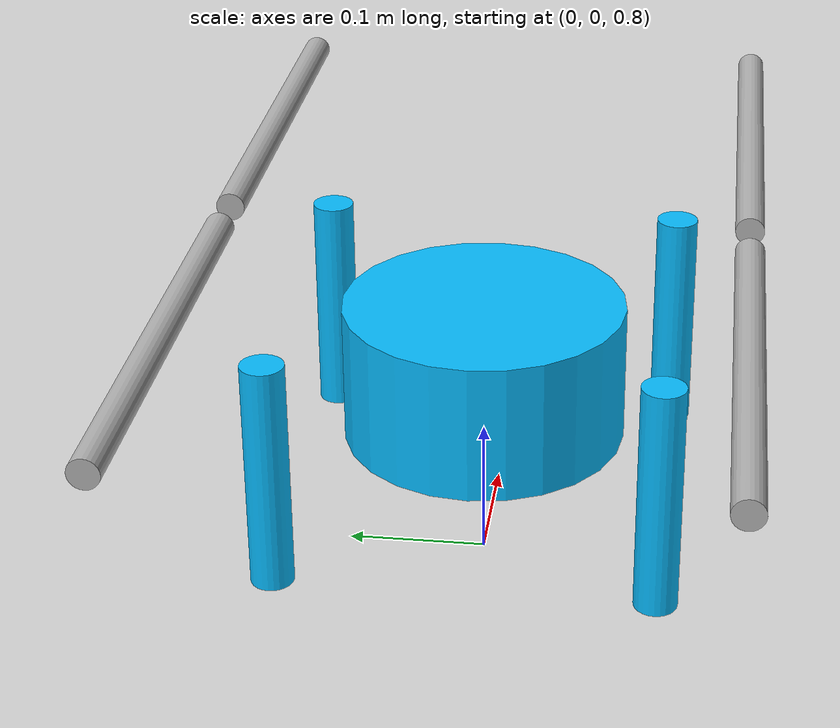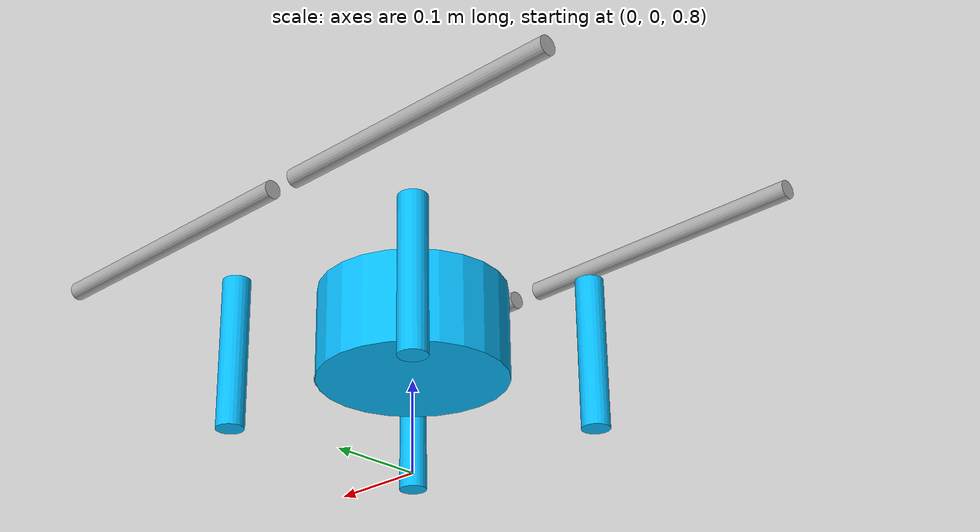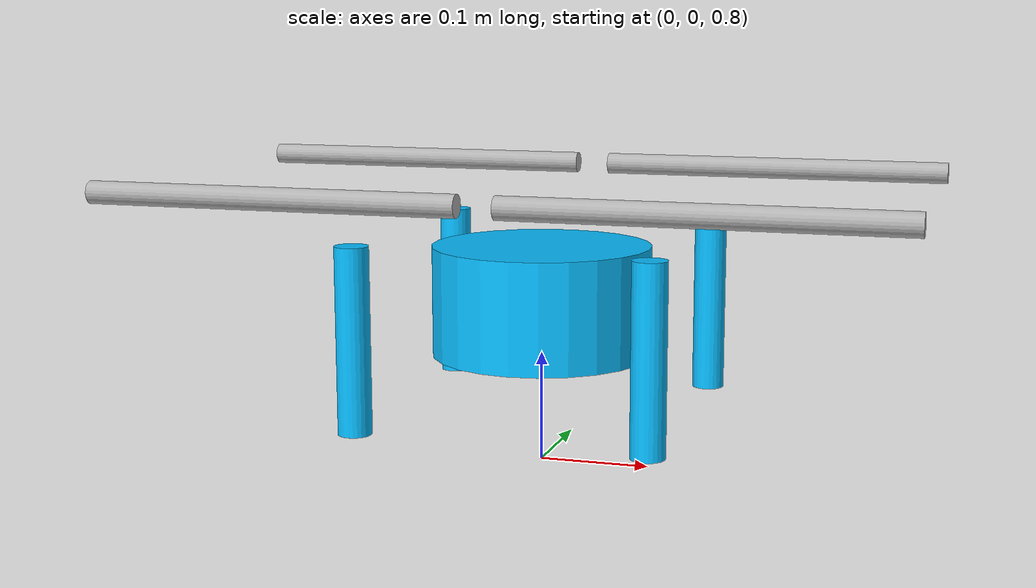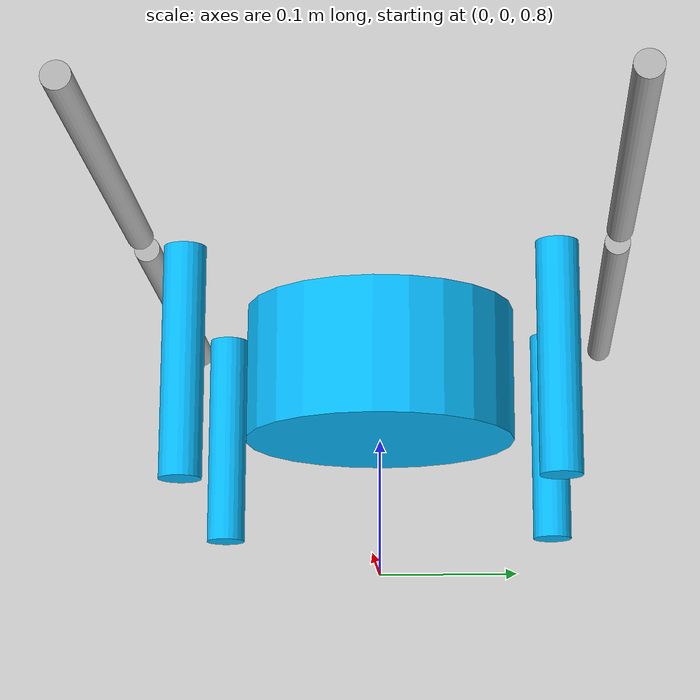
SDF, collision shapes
<?xml version="1.0" encoding="UTF-8"?>
<sdf version='1.9'>
  <model name="x500">
    <pose>0 0 1 0 0 0</pose>
	  <self_collide>false</self_collide>
	  <static>false</static>

    <link name="base_link">

	    <!-- Body physics {-->
		  <inertial>
		    <mass>2.0</mass>
		    <inertia>
			    <ixx>0.03166666666666667</ixx>
			    <ixy>0</ixy>
			    <ixz>0</ixz>
			    <iyy>0.03166666666666667</iyy>
			    <iyz>0</iyz>
			    <izz>0.0625</izz>
		    </inertia>
		  </inertial>
		  <collision name="base_link_collision">
        <pose>0 0 -0.05 0 0 0</pose>
		    <geometry>
			    <cylinder>
			      <length>0.1</length>
			      <radius>0.1</radius>
			    </cylinder>
		    </geometry>
		    <surface>
			    <contact>
			      <ode>
				      <min_depth>0.001</min_depth>
				      <max_vel>0.0</max_vel>
			      </ode>
			    </contact>
          <friction>
            <ode/>
			    </friction>
		    </surface>
		  </collision>

	    <!-- Body visuals {-->

	    <!-- Boards {-->
		  <visual name="top_board_visual">
		    <pose>0 0 0 0 0 1.5707963267950003</pose>
		    <geometry>
			    <mesh>
			      <uri>model://x500_v2/meshes/x500v2/top_board_mesh_file.dae</uri>
			      <scale>1 1 1</scale>
			    </mesh>
		    </geometry>
		  </visual>

		  <visual name="bottom_board_visual">
		    <pose>0 0 0 0 0 1.5707963267950003</pose>
		    <geometry>
			    <mesh>
			      <uri>model://x500_v2/meshes/x500v2/bottom_board_mesh_file.dae</uri>
			      <scale>1 1 1</scale>
			    </mesh>
		    </geometry>
		  </visual>

	    <!-- Arms and legs {-->

		  <visual name="arm_carbon_front_right_visual">
		    <pose>0 0 0 0 0 0.0</pose>
		    <geometry>
			  <mesh>
			    <uri>model://x500_v2/meshes/x500v2/arm_carbon_mesh_file.dae</uri>
			    <scale>1 1 1</scale>
			  </mesh>
		    </geometry>
		  </visual>

		  <visual name="arm_plastic1_front_right_visual">
		    <pose>0 0 0 0 0 0.0</pose>
		    <geometry>
			    <mesh>
			      <uri>model://x500_v2/meshes/x500v2/arm_plastic1_mesh_file.stl</uri>
			      <scale>1 1 1</scale>
			    </mesh>
		    </geometry>
		    <material> <!-- MRS_BLUE -->
			    <ambient>0.03 0.74 1.0</ambient>
			    <diffuse>0.03 0.74 1.0</diffuse>
			    <specular>0.1 0.1 0.1 1</specular>
		    </material>
		  </visual>

		  <visual name="arm_plastic2_front_right_visual">
		    <pose>0 0 0 0 0 0.0</pose>
		    <geometry>
			    <mesh>
			      <uri>model://x500_v2/meshes/x500v2/arm_plastic2_mesh_file.stl</uri>
			      <scale>1 1 1</scale>
			    </mesh>
		    </geometry>
		    <material> <!-- MRS_BLUE -->
			    <ambient>0.03 0.74 1.0</ambient>
			    <diffuse>0.03 0.74 1.0</diffuse>
			    <specular>0.1 0.1 0.1 1</specular>
		    </material>
		  </visual>

		  <visual name="arm_3d_print_front_right_visual">
		    <pose>0 0 0 0 0 0.0</pose>
		    <geometry>
			    <mesh>
			      <uri>model://x500_v2/meshes/x500v2/arm_3d_print_mesh_file.stl</uri>
			      <scale>1 1 1</scale>
			    </mesh>
		    </geometry>
		    <material>
			    <ambient>0 0 0</ambient>
			    <diffuse>0 0 0</diffuse>
			    <specular>0.1 0.1 0.1 1</specular>
		    </material>
		  </visual>

		  <visual name="arm_carbon_front_left_visual">
		    <pose>0 0 0 0 0 1.57079633</pose>
		    <geometry>
			    <mesh>
			      <uri>model://x500_v2/meshes/x500v2/arm_carbon_mesh_file.dae</uri>
			      <scale>1 1 1</scale>
			    </mesh>
		    </geometry>
		  </visual>

		  <visual name="arm_plastic1_front_left_visual">
		    <pose>0 0 0 0 0 1.57079633</pose>
		    <geometry>
			    <mesh>
			      <uri>model://x500_v2/meshes/x500v2/arm_plastic1_mesh_file.stl</uri>
			      <scale>1 1 1</scale>
			    </mesh>
		    </geometry>
		    <material> <!-- MRS_BLUE -->
			    <ambient>0.03 0.74 1.0</ambient>
			    <diffuse>0.03 0.74 1.0</diffuse>
			    <specular>0.1 0.1 0.1 1</specular>
		    </material>
		  </visual>

		  <visual name="arm_plastic2_front_left_visual">
		    <pose>0 0 0 0 0 1.57079633</pose>
		    <geometry>
			    <mesh>
			      <uri>model://x500_v2/meshes/x500v2/arm_plastic2_mesh_file.stl</uri>
			      <scale>1 1 1</scale>
			    </mesh>
		    </geometry>
		    <material> <!-- MRS_BLUE -->
			    <ambient>0.03 0.74 1.0</ambient>
			    <diffuse>0.03 0.74 1.0</diffuse>
			    <specular>0.1 0.1 0.1 1</specular>
		    </material>
		  </visual>

		  <visual name="arm_3d_print_front_left_visual">
		    <pose>0 0 0 0 0 1.57079633</pose>
		    <geometry>
			    <mesh>
			      <uri>model://x500_v2/meshes/x500v2/arm_3d_print_mesh_file.stl</uri>
			      <scale>1 1 1</scale>
			    </mesh>
		    </geometry>
		    <material> <!-- BLACK -->
			    <ambient>0 0 0 1</ambient>
			    <diffuse>0 0 0 1</diffuse>
			    <specular>0.1 0.1 0.1 1 </specular>
		    </material>
		  </visual>

		  <visual name="arm_carbon_back_left_visual">
		    <pose>0 0 0 0 0 3.14159266</pose>
		    <geometry>
			    <mesh>
			      <uri>model://x500_v2/meshes/x500v2/arm_carbon_mesh_file.dae</uri>
			      <scale>1 1 1</scale>
			    </mesh>
		    </geometry>
		  </visual>

		  <visual name="arm_plastic1_back_left_visual">
		    <pose>0 0 0 0 0 3.14159266</pose>
		    <geometry>
			    <mesh>
			      <uri>model://x500_v2/meshes/x500v2/arm_plastic1_mesh_file.stl</uri>
			      <scale>1 1 1</scale>
			    </mesh>
		    </geometry>
		    <material> <!-- MRS_BLUE -->
			    <ambient>0.03 0.74 1.0</ambient>
			    <diffuse>0.03 0.74 1.0</diffuse>
			    <specular>0.1 0.1 0.1 1</specular>
		    </material>
		  </visual>

		  <visual name="arm_plastic2_back_left_visual">
		    <pose>0 0 0 0 0 3.14159266</pose>
		    <geometry>
			    <mesh>
			      <uri>model://x500_v2/meshes/x500v2/arm_plastic2_mesh_file.stl</uri>
			      <scale>1 1 1</scale>
			    </mesh>
		    </geometry>
		    <material> <!-- MRS_BLUE -->
			    <ambient>0.03 0.74 1.0</ambient>
			    <diffuse>0.03 0.74 1.0</diffuse>
			    <specular>0.1 0.1 0.1 1</specular>
		    </material>
		  </visual>

		  <visual name="arm_3d_print_back_left_visual">
		    <pose>0 0 0 0 0 3.14159266</pose>
		    <geometry>
			    <mesh>
			      <uri>model://x500_v2/meshes/x500v2/arm_3d_print_mesh_file.stl</uri>
			      <scale>1 1 1</scale>
			    </mesh>
		    </geometry>
		    <material> <!-- LASER_BLUE -->
			    <ambient>0 0 1</ambient>
			    <diffuse>0 0 1</diffuse>
			    <specular>0.1 0.1 0.1 1 </specular>
		    </material>
		  </visual>

		  <visual name="arm_carbon_back_right_visual">
		    <pose>0 0 0 0 0 4.71238899</pose>
		    <geometry>
			    <mesh>
			      <uri>model://x500_v2/meshes/x500v2/arm_carbon_mesh_file.dae</uri>
			      <scale>1 1 1</scale>
			    </mesh>
		    </geometry>
		  </visual>

		  <visual name="arm_plastic1_back_right_visual">
		    <pose>0 0 0 0 0 4.71238899</pose>
		    <geometry>
			    <mesh>
			      <uri>model://x500_v2/meshes/x500v2/arm_plastic1_mesh_file.stl</uri>
			      <scale>1 1 1</scale>
			    </mesh>
		    </geometry>
		    <material> <!-- MRS_BLUE -->
			    <ambient>0.03 0.74 1.0</ambient>
			    <diffuse>0.03 0.74 1.0</diffuse>
			    <specular>0.1 0.1 0.1 1</specular>
		    </material>
		  </visual>

		  <visual name="arm_plastic2_back_right_visual">
		    <pose>0 0 0 0 0 4.71238899</pose>
		    <geometry>
			    <mesh>
			      <uri>model://x500_v2/meshes/x500v2/arm_plastic2_mesh_file.stl</uri>
			      <scale>1 1 1</scale>
			    </mesh>
		    </geometry>
		    <material> <!-- MRS_BLUE -->
			    <ambient>0.03 0.74 1.0</ambient>
			    <diffuse>0.03 0.74 1.0</diffuse>
			    <specular>0.1 0.1 0.1 1</specular>
		    </material>
		  </visual>

		  <visual name="arm_3d_print_back_right_visual">
		    <pose>0 0 0 0 0 4.71238899</pose>
		    <geometry>
			    <mesh>
			      <uri>model://x500_v2/meshes/x500v2/arm_3d_print_mesh_file.stl</uri>
			      <scale>1 1 1</scale>
			    </mesh>
		    </geometry>
		    <material> <!-- LASER_BLUE -->
			    <ambient>0 0 1</ambient>
			    <diffuse>0 0 1</diffuse>
			    <specular>0.1 0.1 0.1 1 </specular>
		    </material>
		  </visual>

		  <visual name="leg_3d_print_front_right_visual">
		    <pose>0 0 0 0 0 0</pose>
		    <geometry>
			    <mesh>
			      <uri>model://x500_v2/meshes/x500v2/leg_3d_print_mesh_file.stl</uri>
			      <scale>1 1 1</scale>
			  </mesh>
		    </geometry>
		    <material> <!-- BLACK -->
			    <ambient>0 0 0 1</ambient>
			    <diffuse>0 0 0 1</diffuse>
			    <specular>0.1 0.1 0.1 1 </specular>
		    </material>
		  </visual>

		  <collision name="leg_3d_print_front_right_link_collision">
		    <pose>0.13 -0.13 -0.07 0 0 0</pose>
		    <geometry>
			    <cylinder>
			      <length>0.165</length>
			      <radius>0.015</radius>
			    </cylinder>
		    </geometry>
		    <surface>
			    <contact>
			      <ode>
				      <min_depth>0.001</min_depth>
				      <max_vel>0.0</max_vel>
			      </ode>
			    </contact>
			    <friction>
			      <ode/>
			    </friction>
		    </surface>
		  </collision>

		  <visual name="leg_3d_print_front_left_visual">
		    <pose>0 0 0 0 0 1.57079633</pose>
		    <geometry>
			    <mesh>
			      <uri>model://x500_v2/meshes/x500v2/leg_3d_print_mesh_file.stl</uri>
			      <scale>1 1 1</scale>
			    </mesh>
		    </geometry>
		    <material> <!-- BLACK -->
			    <ambient>0 0 0 1</ambient>
			    <diffuse>0 0 0 1</diffuse>
			    <specular>0.1 0.1 0.1 1 </specular>
		    </material>
		  </visual>

		  <collision name="leg_3d_print_front_left_link_collision">
		    <pose>0.13 0.13 -0.07 0 0 1.57079633</pose>
		    <geometry>
			    <cylinder>
			      <length>0.165</length>
			      <radius>0.015</radius>
			    </cylinder>
		    </geometry>
		    <surface>
			    <contact>
			      <ode>
				      <min_depth>0.001</min_depth>
				      <max_vel>0.0</max_vel>
			      </ode>
			    </contact>
			    <friction>
			      <ode/>
			    </friction>
		    </surface>
		  </collision>

		  <visual name="leg_3d_print_back_left_visual">
		    <pose>0 0 0 0 0 3.14159266</pose>
		    <geometry>
			    <mesh>
			      <uri>model://x500_v2/meshes/x500v2/leg_3d_print_mesh_file.stl</uri>
			      <scale>1 1 1</scale>
			    </mesh>
		    </geometry>
		    <material> <!-- LASER_BLUE -->
			    <ambient>0 0 1</ambient>
			    <diffuse>0 0 1</diffuse>
			    <specular>0.1 0.1 0.1 1 </specular>
		    </material>
		  </visual>

		  <collision name="leg_3d_print_back_left_link_collision">
		    <pose>-0.13 0.13 -0.07 0 0 3.14159266</pose>
		    <geometry>
			    <cylinder>
			      <length>0.165</length>
			      <radius>0.015</radius>
			    </cylinder>
		    </geometry>
		    <surface>
			    <contact>
			      <ode>
				      <min_depth>0.001</min_depth>
				      <max_vel>0.0</max_vel>
			      </ode>
			    </contact>
			    <friction>
			      <ode/>
			    </friction>
		    </surface>
		  </collision>

		  <visual name="leg_3d_print_back_right_visual">
		    <pose>0 0 0 0 0 4.71238899</pose>
		    <geometry>
			    <mesh>
			      <uri>model://x500_v2/meshes/x500v2/leg_3d_print_mesh_file.stl</uri>
			      <scale>1 1 1</scale>
			    </mesh>
		    </geometry>
		    <material> <!-- LASER_BLUE -->
			    <ambient>0 0 1</ambient>
			    <diffuse>0 0 1</diffuse>
			    <specular>0.1 0.1 0.1 1 </specular>
		    </material>
		  </visual>

		  <collision name="leg_3d_print_back_right_link_collision">
		    <pose>-0.13 -0.13 -0.07 0 0 4.71238899</pose>
		    <geometry>
			    <cylinder>
			      <length>0.165</length>
			      <radius>0.015</radius>
			    </cylinder>
		    </geometry>
		    <surface>
			    <contact>
			      <ode>
				      <min_depth>0.001</min_depth>
				      <max_vel>0.0</max_vel>
			      </ode>
			    </contact>
			    <friction>
			      <ode/>
			    </friction>
		    </surface>
		  </collision>

      <!-- intel nuc {-->
		  <visual name="nuc_board_visual">
		    <pose>0 0 0 0 0 1.5707963267950003</pose>
		    <geometry>
			    <mesh>
			      <uri>model://x500_v2/meshes/x500v2/nuc_board_mesh_file.stl</uri>
			      <scale>1 1 1</scale>
			    </mesh>
		    </geometry>
		    <material> <!-- GREY -->
			    <ambient>.3 .3 .3  1</ambient>
			    <diffuse>.7 .7 .7  1</diffuse>
			    <specular>0.01 0.01 0.01 1</specular>
		    </material>
		  </visual>
		  <visual name="nuc_cooler_visual">
		    <pose>0 0 0 0 0 1.5707963267950003</pose>
		    <geometry>
			    <mesh>
			      <uri>model://x500_v2/meshes/x500v2/nuc_cooler_mesh_file.stl</uri>
			      <scale>1 1 1</scale>
			    </mesh>
		    </geometry>
		    <material> <!-- DARK GREY -->
			    <ambient>.175 .175 .175  1.0</ambient>
			    <diffuse>.175 .175 .175  1.0</diffuse>
			    <specular>.175 .175 .175  1.0</specular>
		    </material>
		  </visual>
		  <visual name="nuc_hex_posts_visual">
		    <pose>0 0 0 0 0 1.5707963267950003</pose>
		    <geometry>
			    <mesh>
			      <uri>model://x500_v2/meshes/x500v2/nuc_hex_posts_mesh_file.stl</uri>
			      <scale>1 1 1</scale>
			    </mesh>
		    </geometry>
		    <material> <!-- GREY -->
			    <ambient>.3 .3 .3  1</ambient>
			    <diffuse>.7 .7 .7  1</diffuse>
			    <specular>0.01 0.01 0.01 1</specular>
		    </material>
		  </visual>

      <!-- pixhawk {-->
		  <visual name="pixhawk6c_visual">
		    <pose>0 0 0 0 0 1.5707963267950003</pose>
		    <geometry>
			    <mesh>
			      <uri>model://x500_v2/meshes/x500v2/pixhawk6c_mesh_file.stl</uri>
			      <scale>1 1 1</scale>
			    </mesh>
		    </geometry>
		    <material> <!-- DARK GREY -->
			    <ambient>.175 .175 .175  1.0</ambient>
			    <diffuse>.175 .175 .175  1.0</diffuse>
			    <specular>.175 .175 .175  1.0</specular>
		    </material>
		  </visual>

      <!-- motors {-->

		  <visual name="motor_bottom_front_right_visual">
		    <pose>0 0 0 0 0 0.0</pose>
		    <geometry>
			    <mesh>
			      <uri>model://x500_v2/meshes/x500v2/motor_bottom_mesh_file.stl</uri>
			      <scale>1 1 1</scale>
			    </mesh>
		    </geometry>
		    <material> <!-- GREY -->
			    <ambient>.3 .3 .3  1</ambient>
			    <diffuse>.7 .7 .7  1</diffuse>
			    <specular>0.01 0.01 0.01 1</specular>
		    </material>
		  </visual>

		  <visual name="motor_middle_front_right_visual">
		    <pose>0 0 0 0 0 0.0</pose>
		    <geometry>
			    <mesh>
			      <uri>model://x500_v2/meshes/x500v2/motor_middle_mesh_file.stl</uri>
			      <scale>1 1 1</scale>
			    </mesh>
		    </geometry>
		    <material> <!-- BLACK -->
			    <ambient>0 0 0 1</ambient>
			    <diffuse>0 0 0 1</diffuse>
			    <specular>0.1 0.1 0.1 1 </specular>
		    </material>
		  </visual>

		  <visual name="motor_bottom_front_left_visual">
		    <pose>0 0 0 0 0 1.57079633</pose>
		    <geometry>
			    <mesh>
			      <uri>model://x500_v2/meshes/x500v2/motor_bottom_mesh_file.stl</uri>
			      <scale>1 1 1</scale>
			    </mesh>
		    </geometry>
		    <material> <!-- GREY -->
			    <ambient>.3 .3 .3  1</ambient>
			    <diffuse>.7 .7 .7  1</diffuse>
			    <specular>0.01 0.01 0.01 1</specular>
		    </material>
		  </visual>

		  <visual name="motor_middle_front_left_visual">
		    <pose>0 0 0 0 0 1.57079633</pose>
		    <geometry>
			    <mesh>
			      <uri>model://x500_v2/meshes/x500v2/motor_middle_mesh_file.stl</uri>
			      <scale>1 1 1</scale>
			    </mesh>
		    </geometry>
		    <material> <!-- BLACK -->
			    <ambient>0 0 0 1</ambient>
			    <diffuse>0 0 0 1</diffuse>
			    <specular>0.1 0.1 0.1 1 </specular>
		    </material>
		  </visual>

		  <visual name="motor_bottom_back_left_visual">
		    <pose>0 0 0 0 0 3.14159266</pose>
		    <geometry>
			    <mesh>
			      <uri>model://x500_v2/meshes/x500v2/motor_bottom_mesh_file.stl</uri>
			      <scale>1 1 1</scale>
			    </mesh>
		    </geometry>
		    <material> <!-- GREY -->
			    <ambient>.3 .3 .3  1</ambient>
			    <diffuse>.7 .7 .7  1</diffuse>
			    <specular>0.01 0.01 0.01 1</specular>
		    </material>
		  </visual>

		  <visual name="motor_middle_back_left_visual">
		    <pose>0 0 0 0 0 3.14159266</pose>
		    <geometry>
			    <mesh>
			      <uri>model://x500_v2/meshes/x500v2/motor_middle_mesh_file.stl</uri>
			      <scale>1 1 1</scale>
			    </mesh>
		    </geometry>
		    <material> <!-- BLACK -->
			    <ambient>0 0 0 1</ambient>
			    <diffuse>0 0 0 1</diffuse>
			    <specular>0.1 0.1 0.1 1 </specular>
		    </material>
		  </visual>

		  <visual name="motor_bottom_back_right_visual">
		    <pose>0 0 0 0 0 4.71238899</pose>
		    <geometry>
			    <mesh>
			      <uri>model://x500_v2/meshes/x500v2/motor_bottom_mesh_file.stl</uri>
			      <scale>1 1 1</scale>
			    </mesh>
		    </geometry>
		    <material> <!-- GREY -->
			    <ambient>.3 .3 .3  1</ambient>
			    <diffuse>.7 .7 .7  1</diffuse>
			    <specular>0.01 0.01 0.01 1</specular>
		    </material>
		  </visual>

		  <visual name="motor_middle_back_right_visual">
		    <pose>0 0 0 0 0 4.71238899</pose>
		    <geometry>
			    <mesh>
			      <uri>model://x500_v2/meshes/x500v2/motor_middle_mesh_file.stl</uri>
			      <scale>1 1 1</scale>
			    </mesh>
		    </geometry>
		    <material> <!-- BLACK -->
			    <ambient>0 0 0 1</ambient>
			    <diffuse>0 0 0 1</diffuse>
			    <specular>0.1 0.1 0.1 1 </specular>
		    </material>
		  </visual>

      <!-- battery mount and battery {-->
		  <visual name="battery_mount_visual">
		    <pose>0 0 0.001 0 0 1.5707963267950003</pose>
		    <geometry>
			    <mesh>
			      <uri>model://x500_v2/meshes/x500v2/battery_mount_mesh_file.stl</uri>
			      <scale>1 1 1</scale>
			    </mesh>
		    </geometry>
		    <material> <!-- LASER_BLUE -->
			    <ambient>0 0 1</ambient>
			    <diffuse>0 0 1</diffuse>
			    <specular>0.1 0.1 0.1 1 </specular>
		    </material>
		  </visual>
		  <visual name="battery_visual">
		    <pose>0 0 0.001 0 0 1.5707963267950003</pose>
		    <geometry>
			    <mesh>
			      <uri>model://x500_v2/meshes/x500v2/battery_mesh_file.stl</uri>
			      <scale>1 1 1</scale>
			    </mesh>
		    </geometry>
		    <material> <!-- GREY -->
			    <ambient>.3 .3 .3  1</ambient>
			    <diffuse>.7 .7 .7  1</diffuse>
			    <specular>0.01 0.01 0.01 1</specular>
		    </material>
		  </visual>

      <!-- gps mount and gps {-->
		  <visual name="gps_mount_visual">
		    <pose>0 0 0 0 0 1.5707963267950003</pose>
		    <geometry>
			    <mesh>
			      <uri>model://x500_v2/meshes/x500v2/gps_mount_mesh_file.stl</uri>
			      <scale>1 1 1</scale>
			    </mesh>
		    </geometry>
		    <material> <!-- GREY -->
			    <ambient>.3 .3 .3  1</ambient>
			    <diffuse>.7 .7 .7  1</diffuse>
			    <specular>0.01 0.01 0.01 1</specular>
		    </material>
		  </visual>
		  <visual name="gps_module_visual">
		    <pose>0 0 0 0 0 1.5707963267950003</pose>
		    <geometry>
			    <mesh>
			      <uri>model://x500_v2/meshes/x500v2/gps_module_mesh_file.stl</uri>
			      <scale>1 1 1</scale>
			    </mesh>
		    </geometry>
		    <material> <!-- BLACK -->
			    <ambient>0 0 0 1</ambient>
			    <diffuse>0 0 0 1</diffuse>
			    <specular>0.1 0.1 0.1 1 </specular>
		    </material>
		  </visual>

      <!-- rplidar mount {-->
		  <visual name="garmin_mount_visual">
		    <pose>0 0 0.001 0 0 1.5707963267950003</pose>
		    <geometry>
			    <mesh>
			      <uri>model://x500_v2/meshes/x500v2/garmin_mount_mesh_file.stl</uri>
			      <scale>1 1 1</scale>
			    </mesh>
		    </geometry>
		    <material> <!-- BLACK -->
			    <ambient>0 0 0 1</ambient>
			    <diffuse>0 0 0 1</diffuse>
			    <specular>0.1 0.1 0.1 1 </specular>
		    </material>
		  </visual>

      <sensor name="air_pressure_sensor" type="air_pressure">
        <always_on>1</always_on>
        <update_rate>50</update_rate>
        <air_pressure>
          <pressure>
            <noise type="gaussian">
              <mean>0</mean>
              <stddev>0.01</stddev>
            </noise>
          </pressure>
        </air_pressure>
      </sensor>
      <sensor name="imu_sensor" type="imu">
        <always_on>1</always_on>
        <update_rate>250</update_rate>
      </sensor>

    </link>

    <!-- Propellers {-->
    <link name="prop_0_link">
      <gravity>true</gravity>
      <self_collide>false</self_collide>
      <velocity_decay/>
	    <pose>0.1812 -0.1812 0.057 0 0 0</pose>
	    <inertial>
		    <mass>0.005</mass>
		    <inertia>
		      <ixx>0.0001</ixx>
		      <ixy>0</ixy>
		      <ixz>0</ixz>
		      <iyy>0.0001</iyy>
		      <iyz>0</iyz>
		      <izz>0.0001</izz>
		    </inertia>
	    </inertial>
	    <visual name="prop_0_visual_1">
		    <geometry>
		      <mesh>
		        <uri>model://x500_v2/meshes/x500v2/prop_mesh_file.dae</uri>
		        <scale>1 1 1</scale>
		      </mesh>
		    </geometry>
	    </visual>
	    <visual name="prop_0_visual_2">
		    <pose>0 0 -0.0086 0 0 0</pose>
		    <geometry>
		      <mesh>
		        <uri>model://x500_v2/meshes/x500v2/motor_top_mesh_file.stl</uri>
		        <scale>1 1 1</scale>
		      </mesh>
		    </geometry>
	      <material> <!-- GREY -->
			    <ambient>.3 .3 .3  1</ambient>
			    <diffuse>.7 .7 .7  1</diffuse>
			    <specular>0.01 0.01 0.01 1</specular>
	      </material>
	    </visual>
	    <collision name="prop_0_link_collision">
		    <pose>0 0 0 0 1.5707963267950003 0</pose>
		    <geometry>
		      <cylinder>
		        <length>0.3302</length>
		        <radius>0.01</radius>
		      </cylinder>
		    </geometry>
		    <surface>
		      <contact>
		        <ode/>
		      </contact>
		      <friction>
		        <ode/>
		      </friction>
		    </surface>
	    </collision>
	  </link>
    <joint name="prop_0_joint" type="revolute">
	    <parent>base_link</parent>
	    <child>prop_0_link</child>
	    <axis>
		    <xyz>0 0 1</xyz>
		    <limit>
		      <lower>-1e+16</lower>
		      <upper>1e+16</upper>
		    </limit>
		    <dynamics>
		      <spring_reference>0</spring_reference>
		      <spring_stiffness>0</spring_stiffness>
		    </dynamics>
	    </axis>
	  </joint>

    <link name="prop_1_link">
      <gravity>true</gravity>
      <self_collide>false</self_collide>
      <velocity_decay/>
	    <pose>-0.1812 0.1812 0.057 0 0 0</pose>
	    <inertial>
		    <mass>0.005</mass>
		    <inertia>
		      <ixx>0.0001</ixx>
		      <ixy>0</ixy>
		      <ixz>0</ixz>
		      <iyy>0.0001</iyy>
		      <iyz>0</iyz>
		      <izz>0.0001</izz>
		    </inertia>
	    </inertial>
	    <visual name="prop_1_visual_1">
		    <geometry>
		      <mesh>
		        <uri>model://x500_v2/meshes/x500v2/prop_mesh_file.dae</uri>
		        <scale>1 1 1</scale>
		      </mesh>
		    </geometry>
	    </visual>
	    <visual name="prop_1_visual_2">
		    <pose>0 0 -0.0086 0 0 0</pose>
		    <geometry>
		      <mesh>
		        <uri>model://x500_v2/meshes/x500v2/motor_top_mesh_file.stl</uri>
		        <scale>1 1 1</scale>
		      </mesh>
		    </geometry>
	      <material> <!-- GREY -->
			    <ambient>.3 .3 .3  1</ambient>
			    <diffuse>.7 .7 .7  1</diffuse>
			    <specular>0.01 0.01 0.01 1</specular>
	      </material>
	    </visual>
	    <collision name="prop_1_link_collision">
		    <pose>0 0 0 0 1.5707963267950003 0</pose>
		    <geometry>
		      <cylinder>
		        <length>0.3302</length>
		        <radius>0.01</radius>
		      </cylinder>
		    </geometry>
		    <surface>
		      <contact>
		        <ode/>
		      </contact>
		      <friction>
		        <ode/>
		      </friction>
		    </surface>
	    </collision>
    </link>
	  <joint name="prop_1_joint" type="revolute">
	    <parent>base_link</parent>
	    <child>prop_1_link</child>
	    <axis>
		    <xyz>0 0 1</xyz>
		    <limit>
		      <lower>-1e+16</lower>
		      <upper>1e+16</upper>
		    </limit>
		    <dynamics>
		      <spring_reference>0</spring_reference>
		      <spring_stiffness>0</spring_stiffness>
		    </dynamics>
	    </axis>
	  </joint>

    <link name="prop_2_link">
      <gravity>true</gravity>
      <self_collide>false</self_collide>
      <velocity_decay/>
	    <pose>0.1812 0.1812 0.057 0 0 0</pose>
	    <inertial>
		    <mass>0.005</mass>
		    <inertia>
		      <ixx>0.0001</ixx>
		      <ixy>0</ixy>
		      <ixz>0</ixz>
		      <iyy>0.0001</iyy>
		      <iyz>0</iyz>
		      <izz>0.0001</izz>
		    </inertia>
	    </inertial>
	    <visual name="prop_2_visual_1">
		    <geometry>
		      <mesh>
		        <uri>model://x500_v2/meshes/x500v2/prop_mesh_file.dae</uri>
		        <scale>-1 1 1</scale>
		      </mesh>
		    </geometry>
	    </visual>
	    <visual name="prop_2_visual_2">
		    <pose>0 0 -0.0086 0 0 0</pose>
		    <geometry>
		      <mesh>
		        <uri>model://x500_v2/meshes/x500v2/motor_top_mesh_file.stl</uri>
		        <scale>-1 1 1</scale>
		      </mesh>
		    </geometry>
	      <material> <!-- GREY -->
			    <ambient>.3 .3 .3  1</ambient>
			    <diffuse>.7 .7 .7  1</diffuse>
			    <specular>0.01 0.01 0.01 1</specular>
	      </material>
	    </visual>
	    <collision name="prop_2_link_collision">
		    <pose>0 0 0 0 1.5707963267950003 0</pose>
		    <geometry>
		      <cylinder>
		        <length>0.3302</length>
		        <radius>0.01</radius>
		      </cylinder>
		    </geometry>
		    <surface>
		      <contact>
		        <ode/>
		      </contact>
		      <friction>
		        <ode/>
		      </friction>
		    </surface>
	    </collision>
	  </link>
	  <joint name="prop_2_joint" type="revolute">
	    <parent>base_link</parent>
	    <child>prop_2_link</child>
	    <axis>
		    <xyz>0 0 1</xyz>
		    <limit>
		      <lower>-1e+16</lower>
		      <upper>1e+16</upper>
		    </limit>
		    <dynamics>
		      <spring_reference>0</spring_reference>
		      <spring_stiffness>0</spring_stiffness>
		    </dynamics>
	    </axis>
	  </joint>

    <link name="prop_3_link">
      <gravity>true</gravity>
      <self_collide>false</self_collide>
      <velocity_decay/>
	    <pose>-0.1812 -0.1812 0.057 0 0 0</pose>
	    <inertial>
		    <mass>0.005</mass>
		    <inertia>
		      <ixx>0.0001</ixx>
		      <ixy>0</ixy>
		      <ixz>0</ixz>
		      <iyy>0.0001</iyy>
		      <iyz>0</iyz>
		      <izz>0.0001</izz>
		    </inertia>
	    </inertial>
	    <visual name="prop_3_visual_1">
		    <geometry>
		      <mesh>
		        <uri>model://x500_v2/meshes/x500v2/prop_mesh_file.dae</uri>
		        <scale>-1 1 1</scale>
		      </mesh>
		    </geometry>
	    </visual>
	    <visual name="prop_3_visual_2">
		    <pose>0 0 -0.0086 0 0 0</pose>
		    <geometry>
		      <mesh>
		        <uri>model://x500_v2/meshes/x500v2/motor_top_mesh_file.stl</uri>
		        <scale>-1 1 1</scale>
		      </mesh>
		    </geometry>
	      <material> <!-- GREY -->
			    <ambient>.3 .3 .3  1</ambient>
			    <diffuse>.7 .7 .7  1</diffuse>
			    <specular>0.01 0.01 0.01 1</specular>
	      </material>
	    </visual>
	    <collision name="prop_3_link_collision">
		    <pose>0 0 0 0 1.5707963267950003 0</pose>
		    <geometry>
		      <cylinder>
		        <length>0.3302</length>
		        <radius>0.01</radius>
		      </cylinder>
		    </geometry>
		    <surface>
		      <contact>
		        <ode/>
		      </contact>
		      <friction>
		        <ode/>
		      </friction>
		    </surface>
	    </collision>
    </link>

    <joint name="prop_3_joint" type="revolute">
	    <parent>base_link</parent>
	    <child>prop_3_link</child>
	    <axis>
		    <xyz>0 0 1</xyz>
		    <limit>
		      <lower>-1e+16</lower>
		      <upper>1e+16</upper>
		    </limit>
		    <dynamics>
		      <spring_reference>0</spring_reference>
		      <spring_stiffness>0</spring_stiffness>
		    </dynamics>
	    </axis>
	  </joint>

    <plugin filename="gz-sim-multicopter-motor-model-system" name="gz::sim::systems::MulticopterMotorModel">
	    <jointName>prop_0_joint</jointName>
	    <linkName>prop_0_link</linkName>
        <turningDirection>ccw</turningDirection>
        <timeConstantUp>0.0125</timeConstantUp>
        <timeConstantDown>0.025</timeConstantDown>
        <maxRotVelocity>1000.0</maxRotVelocity>
        <motorConstant>8.54858e-06</motorConstant>
        <momentConstant>0.016</momentConstant>
        <commandSubTopic>command/motor_speed</commandSubTopic>
        <motorNumber>0</motorNumber>
        <rotorDragCoefficient>8.06428e-05</rotorDragCoefficient>
        <rollingMomentCoefficient>1e-06</rollingMomentCoefficient>
        <rotorVelocitySlowdownSim>10</rotorVelocitySlowdownSim>
        <motorType>velocity</motorType>
	  </plugin>

	  <plugin filename="gz-sim-multicopter-motor-model-system" name="gz::sim::systems::MulticopterMotorModel">
	    <jointName>prop_1_joint</jointName>
	    <linkName>prop_1_link</linkName>
        <turningDirection>ccw</turningDirection>
        <timeConstantUp>0.0125</timeConstantUp>
        <timeConstantDown>0.025</timeConstantDown>
        <maxRotVelocity>1000.0</maxRotVelocity>
        <motorConstant>8.54858e-06</motorConstant>
        <momentConstant>0.016</momentConstant>
        <commandSubTopic>command/motor_speed</commandSubTopic>
        <motorNumber>1</motorNumber>
        <rotorDragCoefficient>8.06428e-05</rotorDragCoefficient>
        <rollingMomentCoefficient>1e-06</rollingMomentCoefficient>
        <rotorVelocitySlowdownSim>10</rotorVelocitySlowdownSim>
        <motorType>velocity</motorType>
	  </plugin>

	  <plugin filename="gz-sim-multicopter-motor-model-system" name="gz::sim::systems::MulticopterMotorModel">
	    <jointName>prop_2_joint</jointName>
	    <linkName>prop_2_link</linkName>
        <turningDirection>cw</turningDirection>
        <timeConstantUp>0.0125</timeConstantUp>
        <timeConstantDown>0.025</timeConstantDown>
        <maxRotVelocity>1000.0</maxRotVelocity>
        <motorConstant>8.54858e-06</motorConstant>
        <momentConstant>0.016</momentConstant>
        <commandSubTopic>command/motor_speed</commandSubTopic>
        <motorNumber>2</motorNumber>
        <rotorDragCoefficient>8.06428e-05</rotorDragCoefficient>
        <rollingMomentCoefficient>1e-06</rollingMomentCoefficient>
        <rotorVelocitySlowdownSim>10</rotorVelocitySlowdownSim>
        <motorType>velocity</motorType>
	  </plugin>

	  <plugin filename="gz-sim-multicopter-motor-model-system" name="gz::sim::systems::MulticopterMotorModel">
	    <jointName>prop_3_joint</jointName>
	    <linkName>prop_3_link</linkName>
        <turningDirection>cw</turningDirection>
        <timeConstantUp>0.0125</timeConstantUp>
        <timeConstantDown>0.025</timeConstantDown>
        <maxRotVelocity>1000.0</maxRotVelocity>
        <motorConstant>8.54858e-06</motorConstant>
        <momentConstant>0.016</momentConstant>
        <commandSubTopic>command/motor_speed</commandSubTopic>
        <motorNumber>3</motorNumber>
        <rotorDragCoefficient>8.06428e-05</rotorDragCoefficient>
        <rollingMomentCoefficient>1e-06</rollingMomentCoefficient>
        <rotorVelocitySlowdownSim>10</rotorVelocitySlowdownSim>
        <motorType>velocity</motorType>
	  </plugin>
  </model>
</sdf>
